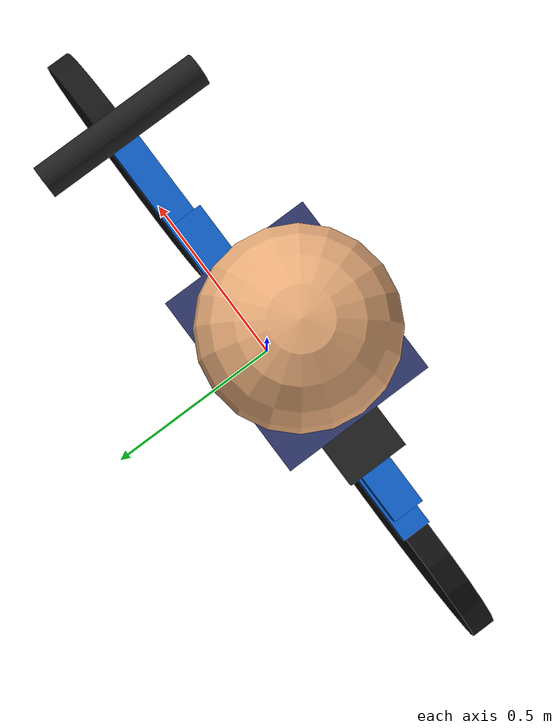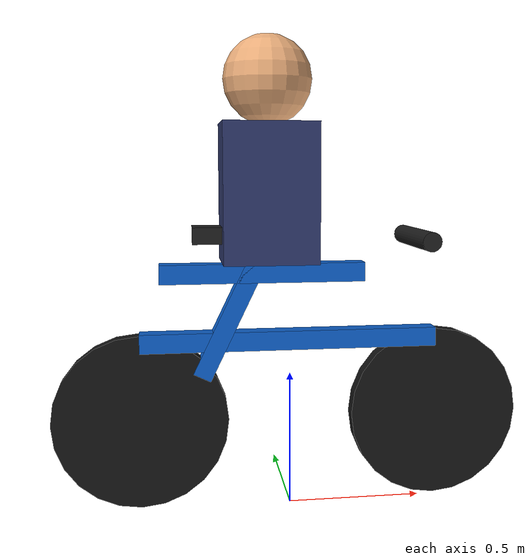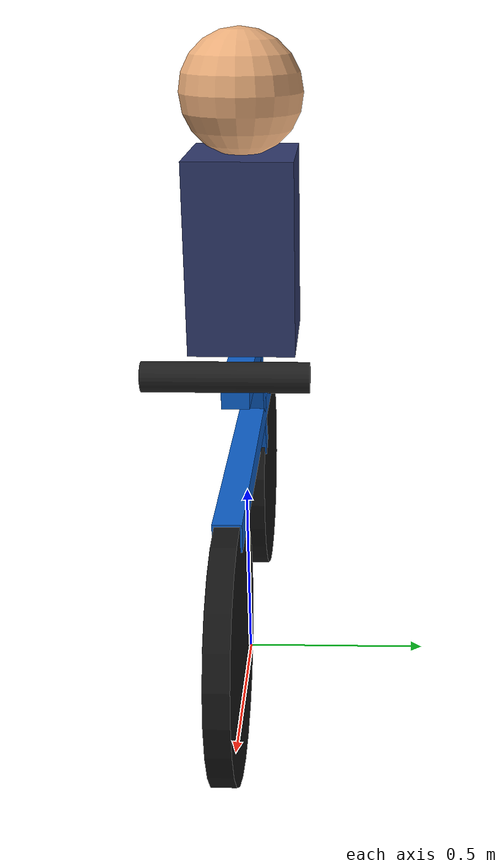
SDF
<?xml version="1.0"?>
<sdf version="1.6">
  <model name="cleannav_demo_bicycle">
    <static>false</static>
    <allow_auto_disable>false</allow_auto_disable>
    <link name="link">
      <gravity>false</gravity>
      <kinematic>true</kinematic>
      <inertial>
        <mass>5.0</mass>
        <inertia>
          <ixx>0.20</ixx>
          <ixy>0.0</ixy>
          <ixz>0.0</ixz>
          <iyy>0.20</iyy>
          <iyz>0.0</iyz>
          <izz>0.20</izz>
        </inertia>
      </inertial>

      <visual name="visual_rear_wheel">
        <pose>-0.55 0 0.34 1.57079632679 0 0</pose>
        <geometry>
          <cylinder>
            <radius>0.32</radius>
            <length>0.06</length>
          </cylinder>
        </geometry>
        <material>
          <ambient>0.03 0.03 0.03 1</ambient>
          <diffuse>0.08 0.08 0.08 1</diffuse>
        </material>
      </visual>
      <visual name="visual_front_wheel">
        <pose>0.55 0 0.34 1.57079632679 0 0</pose>
        <geometry>
          <cylinder>
            <radius>0.32</radius>
            <length>0.06</length>
          </cylinder>
        </geometry>
        <material>
          <ambient>0.03 0.03 0.03 1</ambient>
          <diffuse>0.08 0.08 0.08 1</diffuse>
        </material>
      </visual>
      <visual name="visual_frame_lower">
        <pose>0 0 0.63 0 0 0</pose>
        <geometry>
          <box>
            <size>1.10 0.07 0.07</size>
          </box>
        </geometry>
        <material>
          <ambient>0.03 0.18 0.40 1</ambient>
          <diffuse>0.05 0.38 0.80 1</diffuse>
        </material>
      </visual>
      <visual name="visual_frame_top">
        <pose>-0.10 0 0.88 0 0 0</pose>
        <geometry>
          <box>
            <size>0.75 0.07 0.07</size>
          </box>
        </geometry>
        <material>
          <ambient>0.03 0.18 0.40 1</ambient>
          <diffuse>0.05 0.38 0.80 1</diffuse>
        </material>
      </visual>
      <visual name="visual_frame_seat_tube">
        <pose>-0.20 0 0.76 0 0.45 0</pose>
        <geometry>
          <box>
            <size>0.07 0.07 0.58</size>
          </box>
        </geometry>
        <material>
          <ambient>0.03 0.18 0.40 1</ambient>
          <diffuse>0.05 0.38 0.80 1</diffuse>
        </material>
      </visual>
      <visual name="visual_handlebar">
        <pose>0.48 0 1.00 1.57079632679 0 0</pose>
        <geometry>
          <cylinder>
            <radius>0.035</radius>
            <length>0.38</length>
          </cylinder>
        </geometry>
        <material>
          <ambient>0.04 0.04 0.04 1</ambient>
          <diffuse>0.12 0.12 0.12 1</diffuse>
        </material>
      </visual>
      <visual name="visual_seat">
        <pose>-0.23 0 1.02 0 0 0</pose>
        <geometry>
          <box>
            <size>0.25 0.13 0.06</size>
          </box>
        </geometry>
        <material>
          <ambient>0.04 0.04 0.04 1</ambient>
          <diffuse>0.12 0.12 0.12 1</diffuse>
        </material>
      </visual>
      <visual name="visual_rider_torso">
        <pose>-0.08 0 1.17 0 0 0</pose>
        <geometry>
          <box>
            <size>0.34 0.28 0.50</size>
          </box>
        </geometry>
        <material>
          <ambient>0.12 0.12 0.16 1</ambient>
          <diffuse>0.18 0.22 0.42 1</diffuse>
        </material>
      </visual>
      <visual name="visual_rider_head">
        <pose>-0.08 0 1.57 0 0 0</pose>
        <geometry>
          <sphere>
            <radius>0.16</radius>
          </sphere>
        </geometry>
        <material>
          <ambient>0.76 0.52 0.34 1</ambient>
          <diffuse>0.92 0.68 0.48 1</diffuse>
        </material>
      </visual>
    </link>
  </model>
</sdf>
